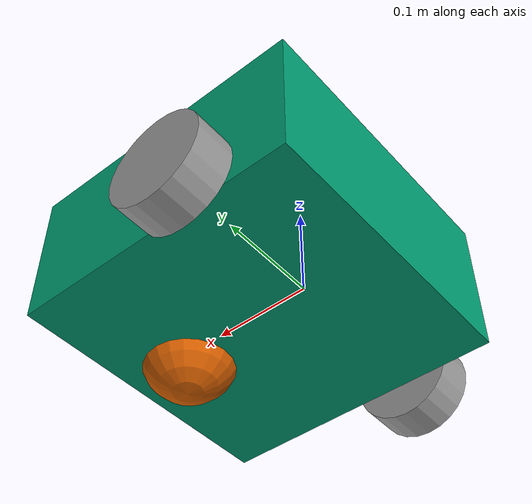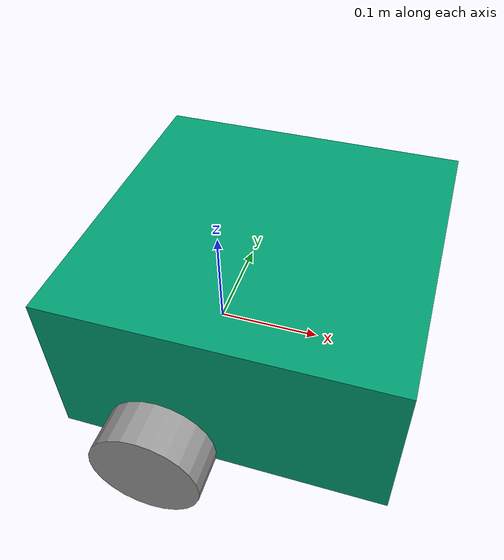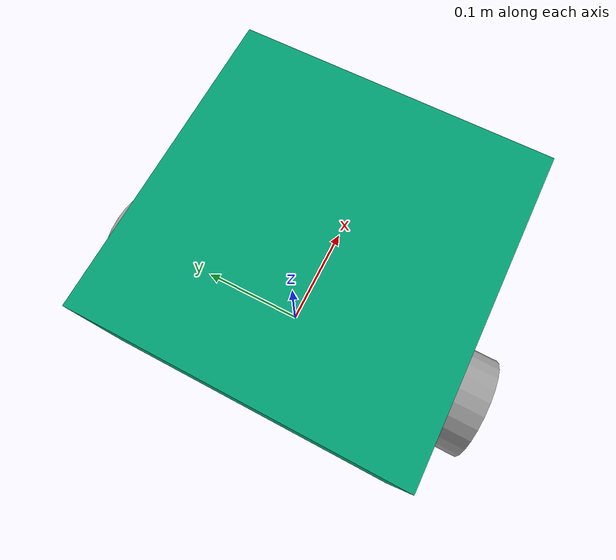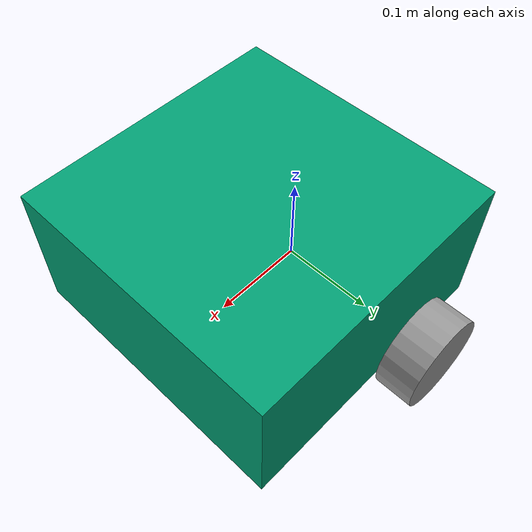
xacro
<?xml version="1.0"?>
<robot xmlns:xacro="http://www.ros.org/wiki/xacro"> <!--without name-->
<!--0. include core File into robot.urdf.xacro
  ; 1. specify links
  ; 2. colours
  ; 3. base Link
  ; 4. chassis
  ; 5. drive wheels
  ; 6. collision
  ; 7. inertia-->

<!--....................xacro variables declaration..........................-->

<xacro:property name="chassis_length" value="0.3"/>
<xacro:property name="chassis_width" value="0.3"/>
<xacro:property name="chassis_depth" value="0.15"/>
<xacro:property name="chassis_mass" value="0.5"/>

<xacro:property name="wheel_offset_x" value="0.1 "/> <!--connect to base_link tf-->
<xacro:property name="wheel_offset_y" value="0.175"/>
<xacro:property name="wheel_offset_z" value="0.02"/>
<xacro:property name="wheel_radius" value="0.05"/>
<xacro:property name="wheel_thickness" value="0.04"/>
<xacro:property name="wheel_mass" value="0.1"/>

<xacro:property name="caster_wheel_radius" value="0.05"/>
<xacro:property name="caster_wheel_mass" value="0.1"/>
<xacro:property name="caster_wheel_offset_x" value="0.24"/>
<xacro:property name="caster_wheel_offset_z" value="${wheel_offset_z - wheel_radius + caster_wheel_radius}"/>

        <!--... all the joint and link names will go in here ... -->
    <link name="base_link">
    </link>

    <joint name="base_footprint_joint" type="fixed">
        <parent link="base_link"/>
        <child link="base_footprint"/>
        <!-- base_link not actually "on the ground", so z0 = wheelAxis ; z0 = z at zero-->
        <origin xyz="0 0 0" rpy="0 0 0"/>
    </joint>

    <link name="base_footprint">
    </link>

            <!--... CHASSIS LINK... -->
    <!--fixed joint: chassis link connected to base_link-->
    <joint name="chassis_joint" type="fixed">
        <parent link="base_link"/>
        <child link="chassis"/>
        <origin xyz="-${wheel_offset_x} 0 -${wheel_offset_z}"/>
    </joint>

    <link name="chassis">
        <visual>
            <!--set back reference point, bottom-rear-centre of the chassis -->
            <origin xyz="${chassis_length/2} 0 ${chassis_depth/2}" rpy="0 0 0"/>
            <geometry>
                <box size="${chassis_length} ${chassis_width} ${chassis_depth}"/>
            </geometry>
            <material name="feldgrau"/>
        </visual>
        <!--collision-->
        <collision>
            <origin xyz="${chassis_length/2} 0 ${chassis_depth/2}" rpy="0 0 0"/>
            <geometry>
                <box size="${chassis_length} ${chassis_width} ${chassis_depth}"/>
            </geometry> <!--no material needed-->
        </collision>
        <!--inertia-->
        <xacro:inertial_box mass="${chassis_mass}" x="${chassis_length}" y="${chassis_width}" z="${chassis_depth}">
            <origin xyz="${chassis_length/2} 0 ${chassis_depth/2}" rpy="0 0 0"/>
        </xacro:inertial_box>
    </link>

    <!--specify Gazebo for each link.-->
    <gazebo reference="chassis">
        <!--Gazebo uses different material/colour system as RViz.-->
        <material>Gazebo/BuildingFrame</material>
    </gazebo>

            <!--... WHEELS ... -->
    <!--continuous joint: wheel connected to chassis link & base_link-->
    <!--ROS though, cylinders by default oriented along Z axis.-->
    <!--“roll” cylinder by quarter-turn around the X axis.-->
    <!-- LEFT WHEEL LINK -->
    <joint name="left_wheel_joint" type="continuous">
        <parent link="base_link"/>
        <child link="left_wheel"/>
        <!--first: rotate clockwise (negative) around X (−pi/2 rad) -->
        <!--after: move along +Y axis for wheels rotation axis -->
        <origin xyz="0 ${wheel_offset_y} 0" rpy="-${pi/2} 0 0" />
        <!--second: move along new Z-->
        <axis xyz="0 0 1"/>
    </joint>

    <link name="left_wheel">
        <visual>
            <geometry>
                <cylinder radius="${wheel_radius}" length="${wheel_thickness}"/>
            </geometry>
            <material name="battleship_gray"/>
        </visual>
        <!--collision-->
        <collision>
            <geometry>
                <cylinder radius="${wheel_radius}" length="${wheel_thickness}"/>
            </geometry> <!--no material needed-->
        </collision>
        <!--inertia-->
        <xacro:inertial_cylinder mass="${wheel_mass}" length="${wheel_radius}" radius="${wheel_thickness}">
            <origin xyz="0 0 0" rpy="0 0 0"/>
        </xacro:inertial_cylinder>
    </link>

    <!--specify Gazebo for each link.-->
    <gazebo reference="left_wheel">
        <material>Gazebo/Wood</material>
    </gazebo>

    <!-- RIGHT WHEEL LINK-->
    <!--joint name="right_wheel_joint" type="fixed"> continuous -->
    <joint name="right_wheel_joint" type="continuous"> <!--contininuous need published joint states-->
        <parent link="base_link"/>
        <child link="right_wheel"/>
        <origin xyz="0 -${wheel_offset_y} 0" rpy="${pi/2} 0 0"/>
        <axis xyz="0 0 -1"/>
    </joint>

    <link name="right_wheel">
        <visual>
            <geometry>
                <cylinder radius="${wheel_radius}" length="${wheel_thickness}"/>
            </geometry>
            <material name="battleship_gray"/>
        </visual>
        <!--collision-->
        <collision>
            <geometry>
                <cylinder radius="${wheel_radius}" length="${wheel_thickness}"/>
            </geometry> <!--no material needed-->
        </collision>
        <!--inertia-->
        <xacro:inertial_cylinder mass="${wheel_mass}" length="${wheel_radius}" radius="${wheel_thickness}">
            <origin xyz="0 0 0" rpy="0 0 0"/>
        </xacro:inertial_cylinder>
    </link>

    <!--specify Gazebo for each link.-->
    <gazebo reference="right_wheel">
        <material>Gazebo/Wood</material>
    </gazebo>

    <!-- CASTER WHEEL LINK --><!-- OMNIWHEEL --><!-- 3and4 WHEEL -->
    <!--frictionless sphere with inertia-->
    <joint name="caster_wheel_joint" type="fixed">
        <parent link="chassis"/>
        <child link="caster_wheel"/>
        <origin xyz="${caster_wheel_offset_x} 0 ${caster_wheel_offset_z}" rpy="0 0 0"/>
    </joint>

    <link name="caster_wheel">
        <visual>
            <geometry>
                <sphere radius="${caster_wheel_radius}" />
            </geometry>
            <material name="jet"/>
        </visual>
        <!--collision-->
        <collision>
            <geometry>
                <sphere radius="${caster_wheel_radius}" />
            </geometry> <!--no material needed-->
        </collision>
        <!--inertia-->
        <xacro:inertial_sphere mass="${caster_wheel_mass}" radius="${caster_wheel_radius}">
            <origin xyz="0 0 0" rpy="0 0 0"/>
        </xacro:inertial_sphere>
    </link>

    <!--specify Gazebo for each link.-->
    <gazebo reference="caster_wheel">
        <material>Gazebo/CloudySky</material>
        <!--reducing friction, customise physical properties of the link-->
        <mu1 value="0.001"/>
        <mu2 value="0.001"/>
    </gazebo>

</robot>
